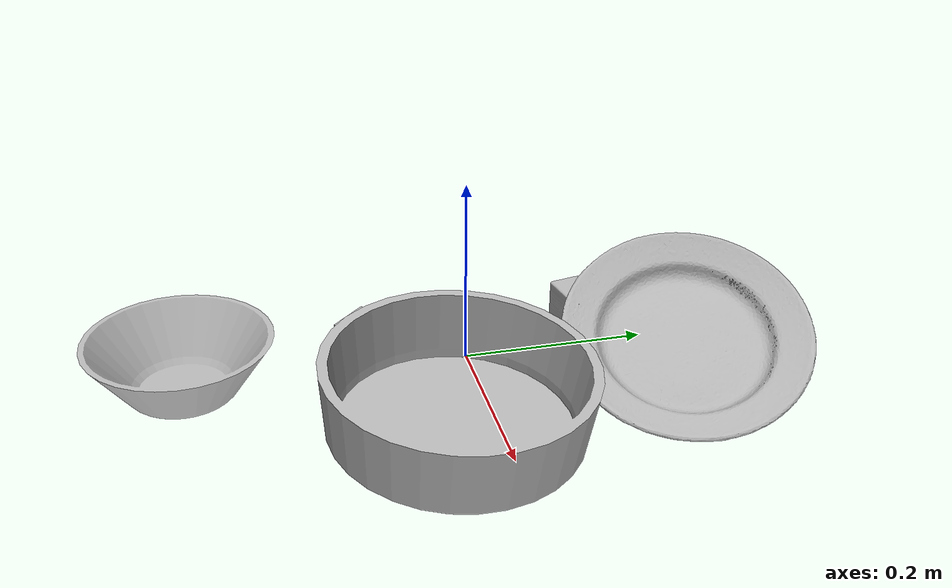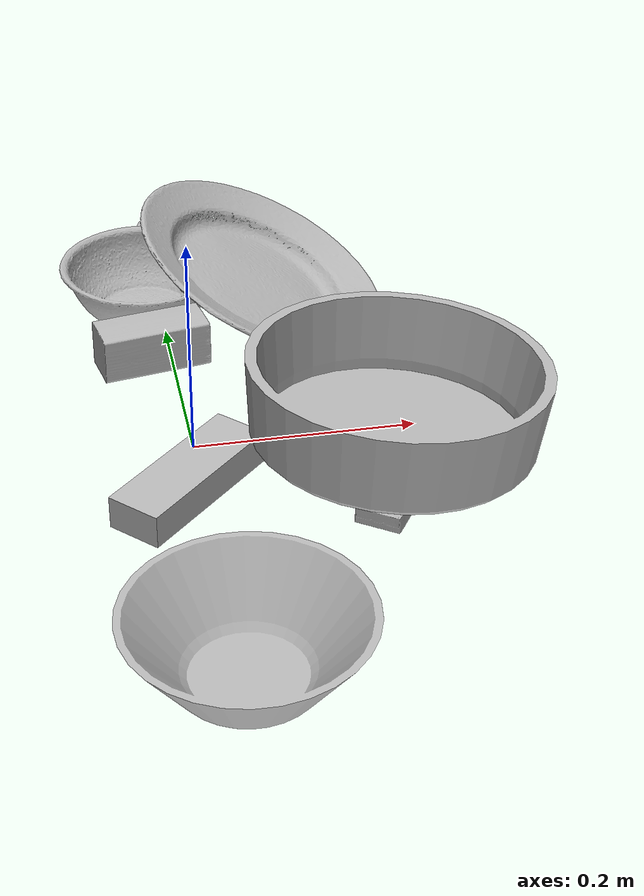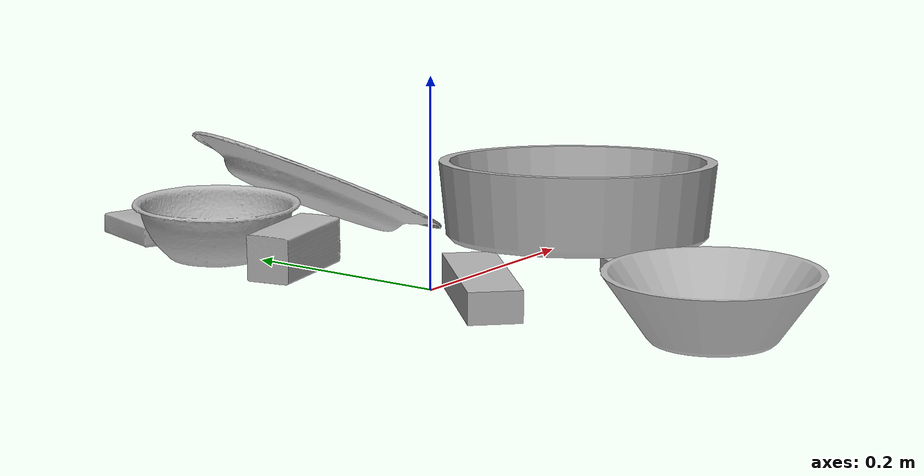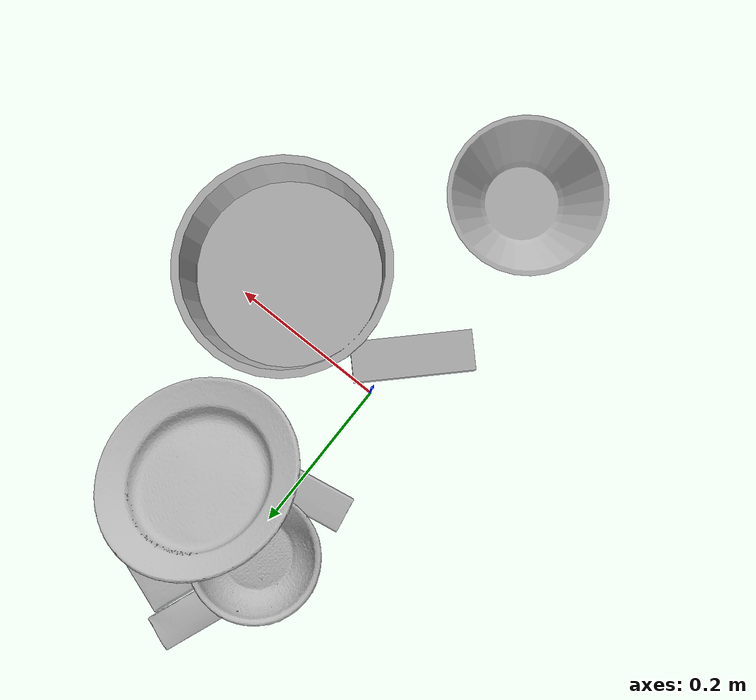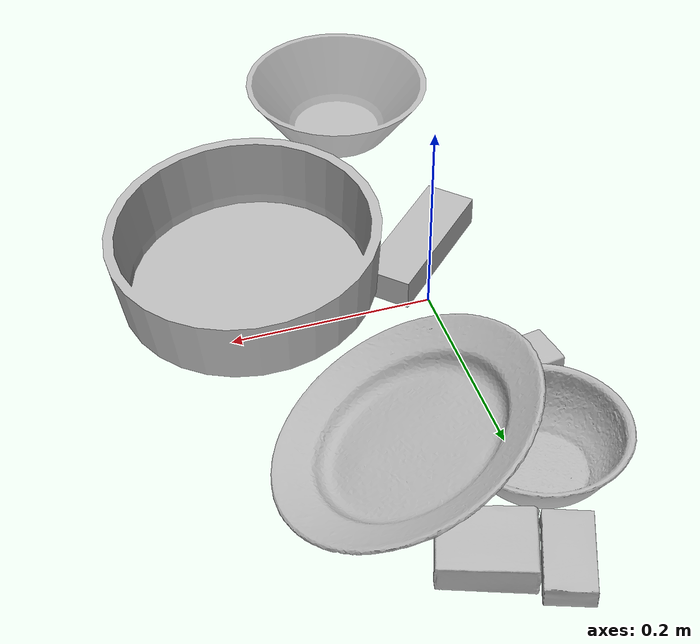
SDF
<sdf version="1.4">
  <world name="default">
    <light name="light1" type="point">
      <pose>0 0 1 0 0 0</pose>
      <diffuse>3 3 3 1</diffuse>
      <specular>3 3 3 1</specular>
    </light>
    <light name="light2" type="point">
      <pose>0 0.5 2 0 0 0</pose>
      <diffuse>1 1 1 1</diffuse>
      <specular>1 1 1 1</specular>
    </light>
    <light name="light3" type="point">
      <pose>0 0.5 2 0 0 0</pose>
      <diffuse>3 3 3 1</diffuse>
      <specular>3 3 3 1</specular>
    </light>
    <scene>
      <ambient>0.7 0.7 0.7</ambient>
    </scene>
    <model name="box1">
      <link name="link_box1">
        <collision name="default">
          <geometry>
            <mesh>
              <uri>model://jenga/collision_meshes/collision.obj</uri>
              <scale>1.0 1.0 1.0</scale>
            </mesh>
          </geometry>
          <surface>
            <friction>
              <ode>
                <mu>0.5</mu>
                <mu2>0.5</mu2>
              </ode>
            </friction>
          <contact>
        <ode>
            <max_vel>0</max_vel>
            <min_depth>0.0001</min_depth>
            <kp>1e8</kp>
        </ode>
    </contact></surface>
        </collision>
        <visual name="default">
          <geometry>
            <mesh>
              <uri>model://jenga/visual_meshes/visual.dae</uri>
              <scale>1.0 1.0 1.0</scale>
            </mesh>
          </geometry>
        </visual>
        <inertial>
          <mass>0.21843092143535614</mass>
          <pose>-2.502855807051674e-07 -0.00010250011109746993 -4.092339804628864e-05 0.0 -7.342154049184251e-07 0.0</pose>
          <inertia>
            <ixx>6.0445138e-05</ixx>
            <iyy>0.0004095746</iyy>
            <izz>0.00043725572</izz>
            <ixy>0</ixy>
            <ixz>0</ixz>
            <iyz>0</iyz>
          </inertia>
        </inertial>
      </link>
      <pose>-0.012508882209658623 -0.06617338955402374 0.015003843232989311 -0.00015740560361438073 -1.3672269896079308e-06 -2.362107274340636</pose>
    </model>
    <model name="box11">
      <link name="link_box11">
        <collision name="default">
          <geometry>
            <mesh>
              <uri>model://pudding_box/collision_meshes/collision.obj</uri>
              <scale>0.5 0.5 0.5</scale>
            </mesh>
          </geometry>
          <surface>
            <friction>
              <ode>
                <mu>0.5</mu>
                <mu2>0.5</mu2>
              </ode>
            </friction>
          <contact>
        <ode>
            <max_vel>0</max_vel>
            <min_depth>0.0001</min_depth>
            <kp>1e8</kp>
        </ode>
    </contact></surface>
        </collision>
        <visual name="default">
          <geometry>
            <mesh>
              <uri>model://pudding_box/visual_meshes/visual.dae</uri>
              <scale>0.5 0.5 0.5</scale>
            </mesh>
          </geometry>
        </visual>
        <inertial>
          <mass>0.04130476340651512</mass>
          <pose>0.00024474109522998333 0.00040339428232982755 -0.0002594413817860186 0.005213101341234124 -0.006603795469139562 0.020079830758209564</pose>
          <inertia>
            <ixx>1.1673226e-05</ixx>
            <iyy>7.85383e-06</iyy>
            <izz>1.723857e-05</izz>
            <ixy>0</ixy>
            <ixz>0</ixz>
            <iyz>0</iyz>
          </inertia>
        </inertial>
      </link>
      <pose>0.21239067614078522 -0.06314516067504883 0.00989062525331974 0.02898816544023851 -0.007855564467313083 2.8724499298607866</pose>
    </model>
    <model name="box2">
      <link name="link_box2">
        <collision name="default">
          <geometry>
            <mesh>
              <uri>model://gelatin_box/collision_meshes/collision.obj</uri>
              <scale>1.0 1.0 1.0</scale>
            </mesh>
          </geometry>
          <surface>
            <friction>
              <ode>
                <mu>0.5</mu>
                <mu2>0.5</mu2>
              </ode>
            </friction>
          <contact>
        <ode>
            <max_vel>0</max_vel>
            <min_depth>0.0001</min_depth>
            <kp>1e8</kp>
        </ode>
    </contact></surface>
        </collision>
        <visual name="default">
          <geometry>
            <mesh>
              <uri>model://gelatin_box/visual_meshes/visual.dae</uri>
              <scale>1.0 1.0 1.0</scale>
            </mesh>
          </geometry>
        </visual>
        <inertial>
          <mass>0.24153950810432434</mass>
          <pose>0.0004319618456065655 0.00011156871914863586 -0.0003640321083366871 -0.001050371984258798 -0.004755819621622892 0.016440559472145032</pose>
          <inertia>
            <ixx>0.00017050719</ixx>
            <iyy>0.00012179239</iyy>
            <izz>0.0002595499</izz>
            <ixy>0</ixy>
            <ixz>0</ixz>
            <iyz>0</iyz>
          </inertia>
        </inertial>
      </link>
      <pose>0.06558813154697418 0.3236139118671417 0.01516831386834383 0.005597445454550948 -0.007304544362892332 -1.9319133857106432</pose>
    </model>
    <model name="box21">
      <link name="link_box21">
        <collision name="default">
          <geometry>
            <mesh>
              <uri>model://cracker_box/collision_meshes/collision.obj</uri>
              <scale>0.25 0.25 0.25</scale>
            </mesh>
          </geometry>
          <surface>
            <friction>
              <ode>
                <mu>0.5</mu>
                <mu2>0.5</mu2>
              </ode>
            </friction>
          <contact>
        <ode>
            <max_vel>0</max_vel>
            <min_depth>0.0001</min_depth>
            <kp>1e8</kp>
        </ode>
    </contact></surface>
        </collision>
        <visual name="default">
          <geometry>
            <mesh>
              <uri>model://cracker_box/visual_meshes/visual.dae</uri>
              <scale>0.25 0.25 0.25</scale>
            </mesh>
          </geometry>
        </visual>
        <inertial>
          <mass>0.04855586588382721</mass>
          <pose>0.00023660322767682374 6.358561222441494e-05 -0.00042573834070935845 -0.00031620783521113603 -0.01110649053142329 0.0025467954689779603</pose>
          <inertia>
            <ixx>7.719027e-06</ixx>
            <iyy>1.2745631e-05</iyy>
            <izz>1.8189185e-05</izz>
            <ixy>0</ixy>
            <ixz>0</ixz>
            <iyz>0</iyz>
          </inertia>
        </inertial>
      </link>
      <pose>0.14796581864356995 -0.12284558266401291 0.009120449423789978 -0.011787883253930681 -0.007367227930441203 0.9658837527251899</pose>
    </model>
    <model name="box3">
      <link name="link_box3">
        <collision name="default">
          <geometry>
            <mesh>
              <uri>model://wood_block/collision_meshes/collision.obj</uri>
              <scale>0.5 0.5 0.5</scale>
            </mesh>
          </geometry>
          <surface>
            <friction>
              <ode>
                <mu>0.5</mu>
                <mu2>0.5</mu2>
              </ode>
            </friction>
          <contact>
        <ode>
            <max_vel>0</max_vel>
            <min_depth>0.0001</min_depth>
            <kp>1e8</kp>
        </ode>
    </contact></surface>
        </collision>
        <visual name="default">
          <geometry>
            <mesh>
              <uri>model://wood_block/visual_meshes/visual.dae</uri>
              <scale>0.5 0.5 0.5</scale>
            </mesh>
          </geometry>
        </visual>
        <inertial>
          <mass>0.17342756688594818</mass>
          <pose>-2.906657982748584e-06 -0.000285404734313488 0.00013204291462898254 -0.052208426481931185 -0.005192696107352816 -0.006861379630616638</pose>
          <inertia>
            <ixx>5.8018082e-05</ixx>
            <iyy>0.00018327912</iyy>
            <izz>0.00018259356</izz>
            <ixy>0</ixy>
            <ixz>0</ixz>
            <iyz>0</iyz>
          </inertia>
        </inertial>
      </link>
      <pose>-0.01879306323826313 0.14567933976650238 0.022629259154200554 -0.0052085596603036344 0.005718740933432546 0.17774398265533708</pose>
    </model>
    <model name="box31">
      <link name="link_box31">
        <collision name="default">
          <geometry>
            <mesh>
              <uri>model://sugar_box/collision_meshes/collision.obj</uri>
              <scale>0.5 0.5 0.5</scale>
            </mesh>
          </geometry>
          <surface>
            <friction>
              <ode>
                <mu>0.5</mu>
                <mu2>0.5</mu2>
              </ode>
            </friction>
          <contact>
        <ode>
            <max_vel>0</max_vel>
            <min_depth>0.0001</min_depth>
            <kp>1e8</kp>
        </ode>
    </contact></surface>
        </collision>
        <visual name="default">
          <geometry>
            <mesh>
              <uri>model://sugar_box/visual_meshes/visual.dae</uri>
              <scale>0.5 0.5 0.5</scale>
            </mesh>
          </geometry>
        </visual>
        <inertial>
          <mass>0.102778859436512</mass>
          <pose>0.0005171863595023751 1.924554817378521e-05 -0.00018182402709499002 -0.00040462592244169 0.0010506634051582892 0.0026153783234817013</pose>
          <inertia>
            <ixx>2.1408765e-05</ixx>
            <iyy>6.919753e-05</iyy>
            <izz>8.2837694e-05</izz>
            <ixy>0</ixy>
            <ixz>0</ixz>
            <iyz>0</iyz>
          </inertia>
        </inertial>
      </link>
      <pose>0.0031201187521219254 0.35140761733055115 0.011401841416954994 -0.0004595765417467903 -0.022915827780571326 -1.9424758260438937</pose>
    </model>
    <model name="plate1">
      <link name="link_plate1">
        <collision name="default">
          <geometry>
            <mesh>
              <uri>model://pan_tefal/collision_meshes/collision.obj</uri>
              <scale>1.0 1.0 1.0</scale>
            </mesh>
          </geometry>
          <surface>
            <friction>
              <ode>
                <mu>0.5</mu>
                <mu2>0.5</mu2>
              </ode>
            </friction>
          <contact>
        <ode>
            <max_vel>0</max_vel>
            <min_depth>0.0001</min_depth>
            <kp>1e8</kp>
        </ode>
    </contact></surface>
        </collision>
        <visual name="default">
          <geometry>
            <mesh>
              <uri>model://pan_tefal/visual_meshes/visual.dae</uri>
              <scale>1.0 1.0 1.0</scale>
            </mesh>
          </geometry>
        </visual>
        <inertial>
          <mass>1.4199398756027222</mass>
          <pose>-0.00018002341676037759 3.278919029980898e-05 -0.00851493515074253 0.0008190238651519852 -0.0003301374854212985 -0.3318555266382279</pose>
          <inertia>
            <ixx>0.009801778</ixx>
            <iyy>0.009864969</iyy>
            <izz>0.01804318</izz>
            <ixy>0</ixy>
            <ixz>0</ixz>
            <iyz>0</iyz>
          </inertia>
        </inertial>
      </link>
      <pose>0.1703258901834488 -0.048435427248477936 0.06022261083126068 -0.08634081548192993 0.00786711769726492 -0.9052782374387133</pose>
    </model>
    <model name="bowl1">
      <link name="link_bowl1">
        <collision name="default">
          <geometry>
            <mesh>
              <uri>model://bowl/collision_meshes/collision.obj</uri>
              <scale>1.0 1.0 1.0</scale>
            </mesh>
          </geometry>
          <surface>
            <friction>
              <ode>
                <mu>0.5</mu>
                <mu2>0.5</mu2>
              </ode>
            </friction>
          <contact>
        <ode>
            <max_vel>0</max_vel>
            <min_depth>0.0001</min_depth>
            <kp>1e8</kp>
        </ode>
    </contact></surface>
        </collision>
        <visual name="default">
          <geometry>
            <mesh>
              <uri>model://bowl/visual_meshes/visual.dae</uri>
              <scale>1.0 1.0 1.0</scale>
            </mesh>
          </geometry>
        </visual>
        <inertial>
          <mass>0.10393582284450531</mass>
          <pose>0.00020445296831894666 -0.001030207728035748 -0.0008042644476518035 -0.01576405922653839 0.014546845721322095 0.7140430703653545</pose>
          <inertia>
            <ixx>0.00023874876</ixx>
            <iyy>0.00023341418</iyy>
            <izz>0.00040165734</izz>
            <ixy>0</ixy>
            <ixz>0</ixz>
            <iyz>0</iyz>
          </inertia>
        </inertial>
      </link>
      <pose>-0.015439075417816639 0.2429654747247696 0.027780041098594666 -4.112818845482428e-06 3.823708394156938e-06 -1.3272001026651619</pose>
    </model>
    <model name="plate2">
      <link name="link_plate2">
        <collision name="default">
          <geometry>
            <mesh>
              <uri>model://plate/collision_meshes/collision.obj</uri>
              <scale>1.0 1.0 1.0</scale>
            </mesh>
          </geometry>
          <surface>
            <friction>
              <ode>
                <mu>0.5</mu>
                <mu2>0.5</mu2>
              </ode>
            </friction>
          <contact>
        <ode>
            <max_vel>0</max_vel>
            <min_depth>0.0001</min_depth>
            <kp>1e8</kp>
        </ode>
    </contact></surface>
        </collision>
        <visual name="default">
          <geometry>
            <mesh>
              <uri>model://plate/visual_meshes/visual.dae</uri>
              <scale>1.0 1.0 1.0</scale>
            </mesh>
          </geometry>
        </visual>
        <inertial>
          <mass>0.11643410474061966</mass>
          <pose>-0.0006044629844836891 0.000278257648460567 -0.001056199660524726 0.0022187586917557377 -0.0032254970862864826 0.45261837235677477</pose>
          <inertia>
            <ixx>0.00054468104</ixx>
            <iyy>0.0005394714</iyy>
            <izz>0.0010653147</izz>
            <ixy>0</ixy>
            <ixz>0</ixz>
            <iyz>0</iyz>
          </inertia>
        </inertial>
      </link>
      <pose>0.09557574987411499 0.21248772740364075 0.04962495341897011 0.1414951591744788 0.43853279918077204 0.05234263808843324</pose>
    </model>
    <model name="bowl2">
      <link name="link_bowl2">
        <collision name="default">
          <geometry>
            <mesh>
              <uri>model://bowl_a/collision_meshes/collision.obj</uri>
              <scale>1.0 1.0 1.0</scale>
            </mesh>
          </geometry>
          <surface>
            <friction>
              <ode>
                <mu>0.5</mu>
                <mu2>0.5</mu2>
              </ode>
            </friction>
          <contact>
        <ode>
            <max_vel>0</max_vel>
            <min_depth>0.0001</min_depth>
            <kp>1e8</kp>
        </ode>
    </contact></surface>
        </collision>
        <visual name="default">
          <geometry>
            <mesh>
              <uri>model://bowl_a/visual_meshes/visual.dae</uri>
              <scale>1.0 1.0 1.0</scale>
            </mesh>
          </geometry>
        </visual>
        <inertial>
          <mass>0.4875580668449402</mass>
          <pose>0.00027867365861311555 4.73092841275502e-05 -0.0013765289913862944 -0.0009805446644095745 -0.0010938154105800495 -0.1912289991244328</pose>
          <inertia>
            <ixx>0.0013881001</ixx>
            <iyy>0.0013966226</iyy>
            <izz>0.0024687892</izz>
            <ixy>0</ixy>
            <ixz>0</ixz>
            <iyz>0</iyz>
          </inertia>
        </inertial>
      </link>
      <pose>-0.0002991195651702583 -0.30193883180618286 0.030383015051484108 -6.503700635572177e-09 3.527354286797538e-09 1.4371234950139864</pose>
    </model>
  <physics type="ode">
      <max_contacts>50</max_contacts>
      <ode>
        <solver>
          <type>quick</type>
          <iters>75</iters>
        </solver>
        <constraints>
          <contact_max_correcting_vel>0</contact_max_correcting_vel>
          <contact_surface_layer>0</contact_surface_layer>
        </constraints>
      </ode>
    </physics></world>
</sdf>
